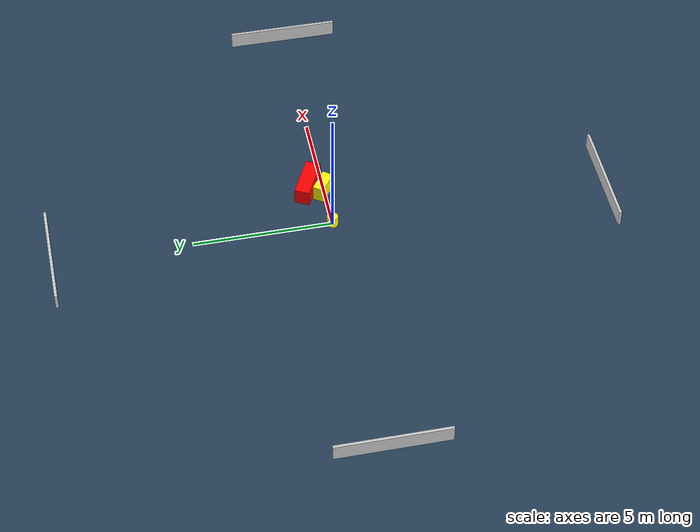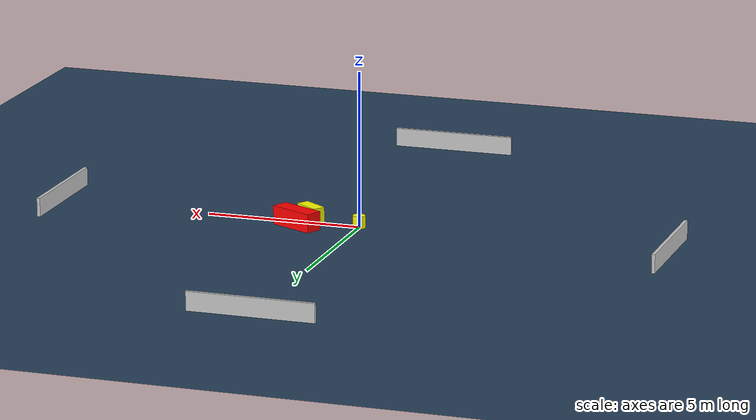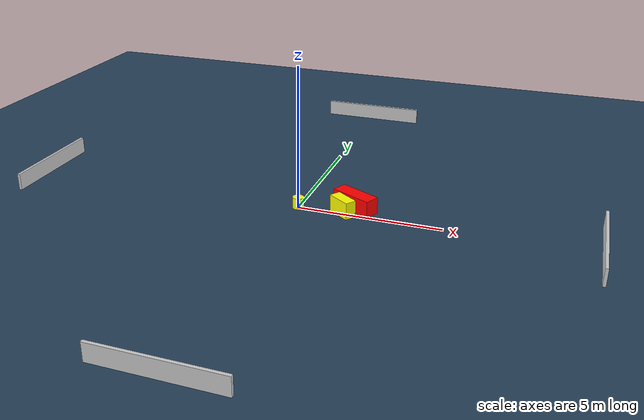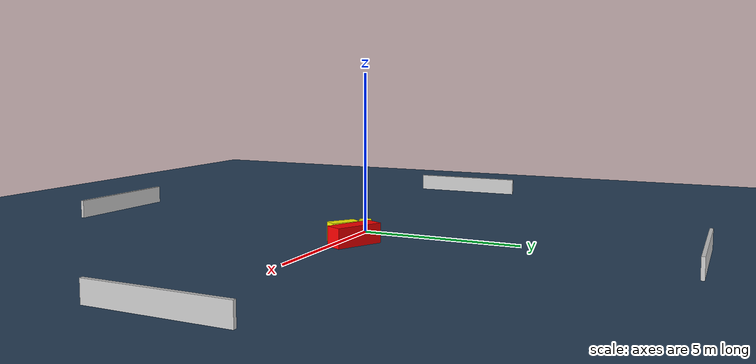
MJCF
<?xml version="1.0" ?>
<mujoco model="generated_environment">
  <option timestep="0.01" integrator="RK4" cone="elliptic"/>
  <default>
    <geom density="1"/>
  </default>
  <asset>
    <texture builtin="gradient" height="3072" name="skybox" rgb1="0.3 0.5 0.7" rgb2="0 0 0" type="skybox" width="512"/>
    <texture builtin="checker" height="300" name="groundplane" rgb1="0.2 0.3 0.4" rgb2="0.1 0.2 0.3" type="2d" width="300"/>
    <material name="groundplane" reflectance="0.2" texrepeat="5 5" texture="groundplane"/>
  </asset>
  <worldbody>
    <light dir="0 0 -1" directional="true" pos="0 0 1.5"/>
    <geom condim="3" friction="0.5 0.005 0.001" material="groundplane" name="floor" pos="0 0 0" size="0 0 0.05" type="plane"/>
    <body name="walls">
      <geom name="wall_1" condim="4" pos="-10.0 0.0 0.3" rgba="0.800000011920929 0.800000011920929 0.800000011920929 1.0" size="0.05 2.0 0.3" type="box"/>
      <geom name="wall_2" condim="4" pos="10.0 0.0 0.3" rgba="0.800000011920929 0.800000011920929 0.800000011920929 1.0" size="0.05 2.0 0.3" type="box"/>
      <geom name="wall_3" condim="4" pos="0.0 -10.0 0.3" rgba="0.800000011920929 0.800000011920929 0.800000011920929 1.0" size="2.0 0.05 0.3" type="box"/>
      <geom name="wall_4" condim="4" pos="0.0 10.0 0.3" rgba="0.800000011920929 0.800000011920929 0.800000011920929 1.0" size="2.0 0.05 0.3" type="box"/>
    </body>
    <body name="robot">
      <joint name="joint_x" type="slide" pos="0 0 0" axis="1 0 0"/>
      <joint name="joint_y" type="slide" pos="0 0 0" axis="0 1 0"/>
      <geom name="robot" type="cylinder" pos="0.0 0.0 0.2" size="0.2 0.2 0.0" mass="5.0" friction="1.0 0.005 0.0001" condim="4" rgba="1.0 1.0 0.0 1.0"/>
    </body>
    <body name="obstacle_1_movable">
      <geom name="obstacle_1_movable" condim="4" pos="1.5850301724071767 0.03217313709249438 0.3" euler="0 0 144.54743578252774" friction="0.0 0.005 0.001" rgba="1.0 1.0 0.0 1.0" size="0.44119187153672923 0.20357962604797675 0.3" type="box" mass="0.1"/>
      <joint type="free"/>
    </body>
    <body name="obstacle_2_static">
      <geom name="obstacle_2_static" condim="4" pos="1.8798005065223236 0.541125255470226 0.3" euler="0 0 63.57957933578875" friction="0.0 0.005 0.001" rgba="1.0 0.0 0.0 1.0" size="0.27461085896904136 0.764721299956747 0.3" type="box"/>
    </body>
  </worldbody>
  <actuator>
    <motor name="actuator_x" joint="joint_x" gear="1" ctrlrange="-1 1"/>
    <motor name="actuator_y" joint="joint_y" gear="1" ctrlrange="-1 1"/>
  </actuator>
</mujoco>
